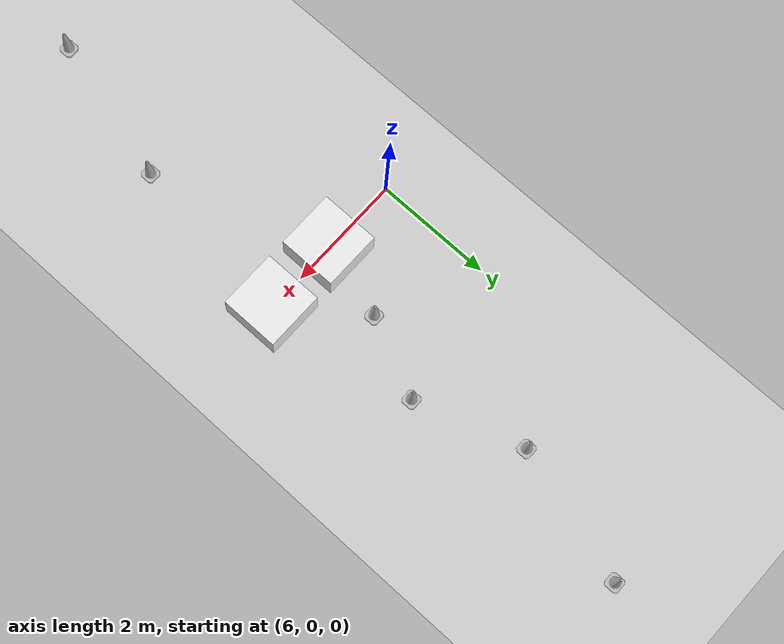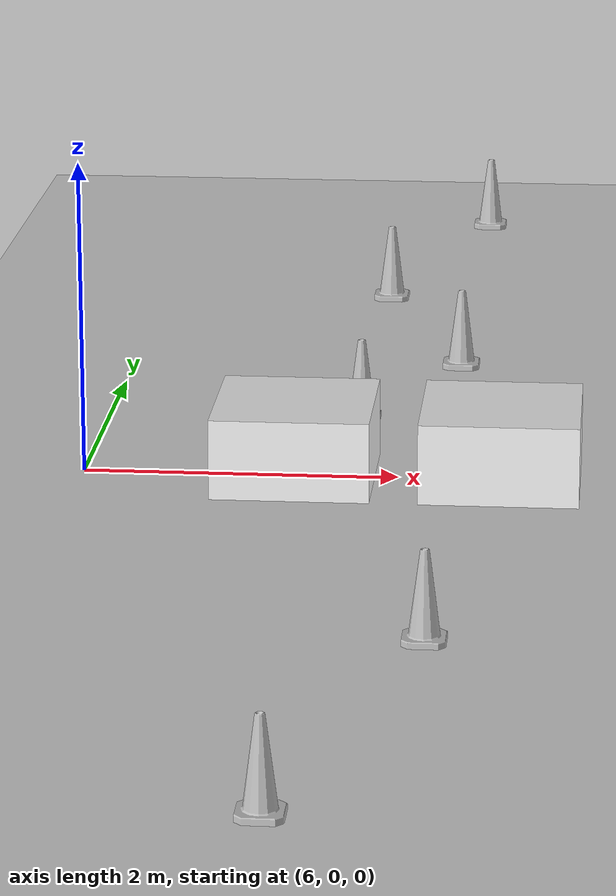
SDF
<sdf version="1.6">
 <world name="default">
  <light name="sun" type="directional">
   <pose>0 0 10 0 -0 0</pose>
   <diffuse>0.8 0.8 0.8 1</diffuse>
   <specular>0.2 0.2 0.2 1</specular>
   <attenuation>
    <range>1000</range>
    <constant>0.9</constant>
    <linear>0.01</linear>
    <quadratic>0.001</quadratic>
   </attenuation>
   <direction>-0.5 0.1 -0.9</direction>
  </light>
  <model name="ground_plane">
   <static>1</static>
   <link name="link">
    <collision name="collision">
     <geometry><plane><normal>0 0 1</normal><size>100 100</size></plane></geometry>
     <surface>
      <contact><collide_bitmask>65535</collide_bitmask></contact>
      <friction><ode><mu>100</mu><mu2>50</mu2></ode></friction>
     </surface>
    </collision>
    <visual name="visual">
     <cast_shadows>0</cast_shadows>
     <geometry><plane><normal>0 0 1</normal><size>100 100</size></plane></geometry>
     <material>
      <script><uri>file://media/materials/scripts/gazebo.material</uri><name>Gazebo/Grey</name></script>
     </material>
    </visual>
   </link>
  </model>
  <gravity>0 0 -9.8</gravity>
  <magnetic_field>6e-06 2.3e-05 -4.2e-05</magnetic_field>
  <atmosphere type="adiabatic"/>
  <physics name="default_physics" default="0" type="ode">
   <max_step_size>0.001</max_step_size>
   <real_time_factor>1</real_time_factor>
   <real_time_update_rate>1000</real_time_update_rate>
  </physics>
  <scene><ambient>0.4 0.4 0.4 1</ambient><background>0.7 0.7 0.7 1</background><shadows>1</shadows></scene>
  <audio><device>default</device></audio>
  <spherical_coordinates>
   <surface_model>EARTH_WGS84</surface_model>
   <latitude_deg>0</latitude_deg>
   <longitude_deg>0</longitude_deg>
   <elevation>0</elevation>
   <heading_deg>0</heading_deg>
  </spherical_coordinates>
  <model name="unit_box">
   <static>1</static>
   <pose>8.65 0 0 0 -0 0</pose>
   <link name="link">
    <inertial>
     <mass>1</mass>
     <inertia>
      <ixx>0.166667</ixx>
      <ixy>0</ixy>
      <ixz>0</ixz>
      <iyy>0.166667</iyy>
      <iyz>0</iyz>
      <izz>0.166667</izz>
     </inertia>
    </inertial>
    <collision name="collision"><geometry><box><size>1 1 1</size></box></geometry></collision>
    <visual name="visual">
     <geometry><box><size>1 1 1</size></box></geometry>
     <material>
      <script><name>Gazebo/White</name><uri>file://media/materials/scripts/gazebo.material</uri></script>
     </material>
    </visual>
    <enable_wind>1</enable_wind>
   </link>
  </model>
  <model name="unit_box_0">
   <static>1</static>
   <pose>7.35 0 0 0 -0 0</pose>
   <link name="link">
    <inertial>
     <mass>1</mass>
     <inertia>
      <ixx>0.166667</ixx>
      <ixy>0</ixy>
      <ixz>0</ixz>
      <iyy>0.166667</iyy>
      <iyz>0</iyz>
      <izz>0.166667</izz>
     </inertia>
    </inertial>
    <collision name="collision"><geometry><box><size>1 1 1</size></box></geometry></collision>
    <visual name="visual">
     <geometry><box><size>1 1 1</size></box></geometry>
     <material>
      <script><name>Gazebo/White</name><uri>file://media/materials/scripts/gazebo.material</uri></script>
     </material>
    </visual>
   </link>
  </model>
  <model name="Construction Cone">
   <link name="link">
    <collision name="collision">
     <geometry>
      <mesh><scale>10 10 10</scale><uri>model://construction_cone/meshes/construction_cone.dae</uri></mesh>
     </geometry>
    </collision>
    <visual name="visual">
     <geometry>
      <mesh><scale>5 5 5</scale><uri>model://construction_cone/meshes/construction_cone.dae</uri></mesh>
     </geometry>
    </visual>
    <inertial>
     <inertia><ixx>1</ixx><ixy>0</ixy><ixz>0</ixz><iyy>1</iyy><iyz>0</iyz><izz>1</izz></inertia>
     <mass>1</mass>
    </inertial>
   </link>
   <pose>8.32254 6.60931 -1e-05 0 -0 0</pose>
  </model>
  <model name="Construction Cone_1">
   <link name="link">
    <collision name="collision">
     <geometry>
      <mesh><scale>10 10 10</scale><uri>model://construction_cone/meshes/construction_cone.dae</uri></mesh>
     </geometry>
    </collision>
    <visual name="visual">
     <geometry>
      <mesh><scale>5 5 5</scale><uri>model://construction_cone/meshes/construction_cone.dae</uri></mesh>
     </geometry>
    </visual>
    <inertial>
     <inertia><ixx>1</ixx><ixy>0</ixy><ixz>0</ixz><iyy>1</iyy><iyz>0</iyz><izz>1</izz></inertia>
     <mass>1</mass>
    </inertial>
   </link>
   <pose>7.67673 4.34881 -0 0 -0 0</pose>
  </model>
  <model name="Construction Cone_2">
   <link name="link">
    <collision name="collision">
     <geometry>
      <mesh><scale>10 10 10</scale><uri>model://construction_cone/meshes/construction_cone.dae</uri></mesh>
     </geometry>
    </collision>
    <visual name="visual">
     <geometry>
      <mesh><scale>5 5 5</scale><uri>model://construction_cone/meshes/construction_cone.dae</uri></mesh>
     </geometry>
    </visual>
    <inertial>
     <inertia><ixx>1</ixx><ixy>0</ixy><ixz>0</ixz><iyy>1</iyy><iyz>0</iyz><izz>1</izz></inertia>
     <mass>1</mass>
    </inertial>
   </link>
   <pose>8.27883 2.55965 -0 0 -0 0</pose>
  </model>
  <model name="Construction Cone_3">
   <link name="link">
    <collision name="collision">
     <geometry>
      <mesh><scale>10 10 10</scale><uri>model://construction_cone/meshes/construction_cone.dae</uri></mesh>
     </geometry>
    </collision>
    <visual name="visual">
     <geometry>
      <mesh><scale>5 5 5</scale><uri>model://construction_cone/meshes/construction_cone.dae</uri></mesh>
     </geometry>
    </visual>
    <inertial>
     <inertia><ixx>1</ixx><ixy>0</ixy><ixz>0</ixz><iyy>1</iyy><iyz>0</iyz><izz>1</izz></inertia>
     <mass>1</mass>
    </inertial>
   </link>
   <pose>7.67673 1.25051 -0 0 -0 0</pose>
  </model>
  <model name="Construction Cone_4">
   <link name="link">
    <collision name="collision">
     <geometry>
      <mesh><scale>10 10 10</scale><uri>model://construction_cone/meshes/construction_cone.dae</uri></mesh>
     </geometry>
    </collision>
    <visual name="visual">
     <geometry>
      <mesh><scale>5 5 5</scale><uri>model://construction_cone/meshes/construction_cone.dae</uri></mesh>
     </geometry>
    </visual>
    <inertial>
     <inertia><ixx>1</ixx><ixy>0</ixy><ixz>0</ixz><iyy>1</iyy><iyz>0</iyz><izz>1</izz></inertia>
     <mass>1</mass>
    </inertial>
   </link>
   <pose>8.33321 -2.94014 -0 0 -1e-06 0</pose>
  </model>
  <model name="Construction Cone_5">
   <link name="link">
    <collision name="collision">
     <geometry>
      <mesh><scale>10 10 10</scale><uri>model://construction_cone/meshes/construction_cone.dae</uri></mesh>
     </geometry>
    </collision>
    <visual name="visual">
     <geometry>
      <mesh><scale>5 5 5</scale><uri>model://construction_cone/meshes/construction_cone.dae</uri></mesh>
     </geometry>
    </visual>
    <inertial>
     <inertia><ixx>1</ixx><ixy>0</ixy><ixz>0</ixz><iyy>1</iyy><iyz>0</iyz><izz>1</izz></inertia>
     <mass>1</mass>
    </inertial>
   </link>
   <pose>7.67005 -5.43623 -0 0 -0 0</pose>
  </model>
 </world>
</sdf>
